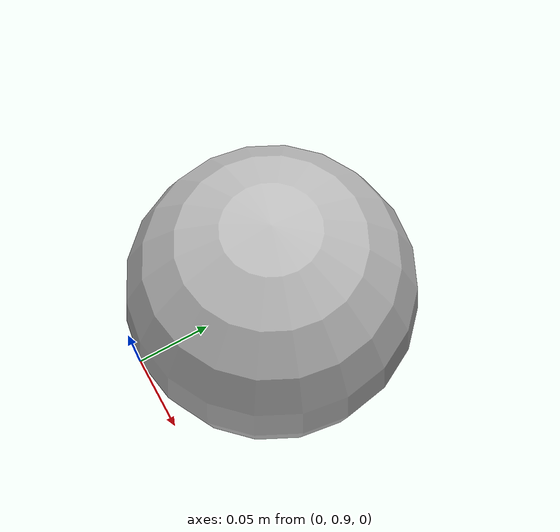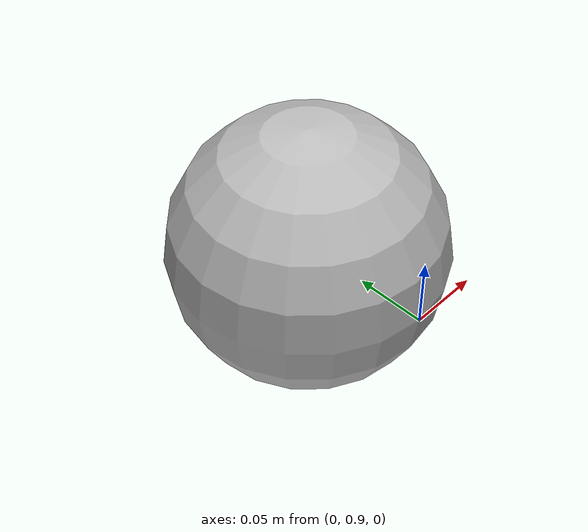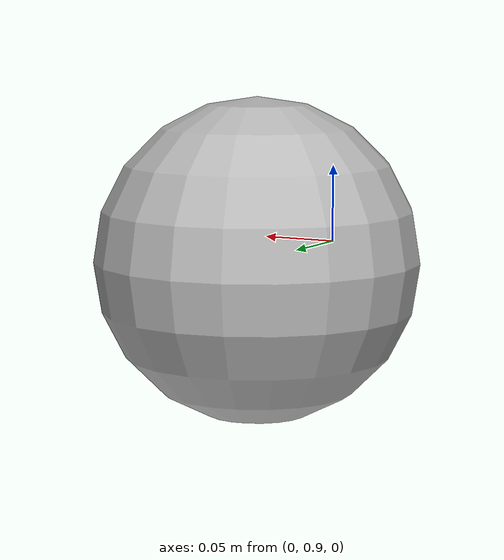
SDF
<?xml version="1.0" ?>
<sdf version="1.4">
  <model name="ChildModel">
    <link name="L1">
      <pose>0 1 0 0 0 0</pose>
      <visual name="v1">
        <geometry>
          <sphere>
            <radius>0.1</radius>
          </sphere>
        </geometry>
      </visual>
    </link>
    <link name="L2"/>
    <joint name="J1" type="revolute">
      <parent>L1</parent>
      <child>L2</child>
    </joint>
  </model>
</sdf>
